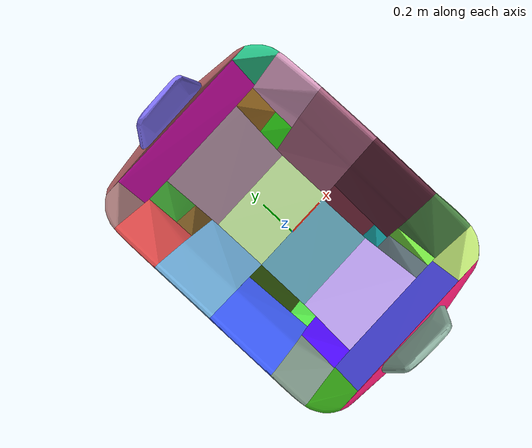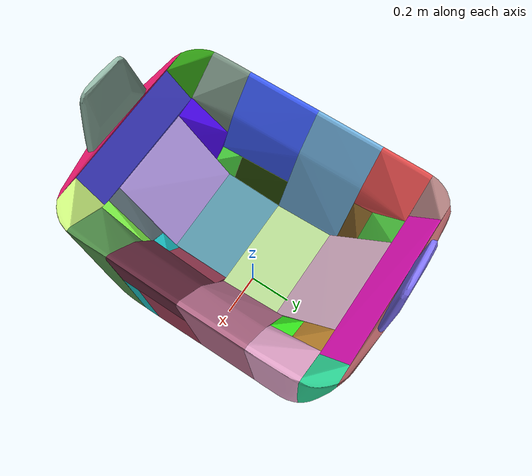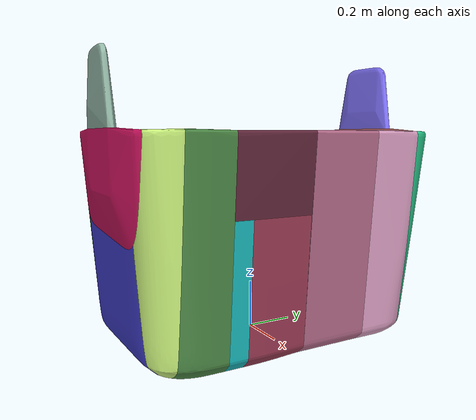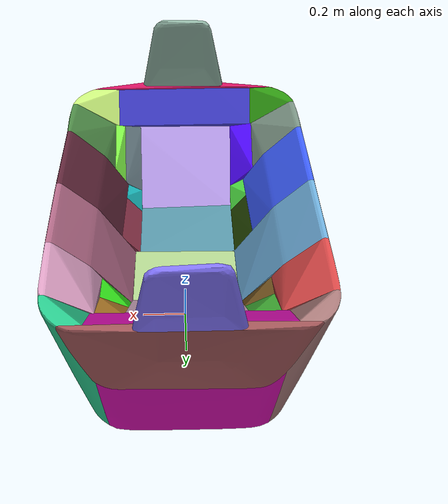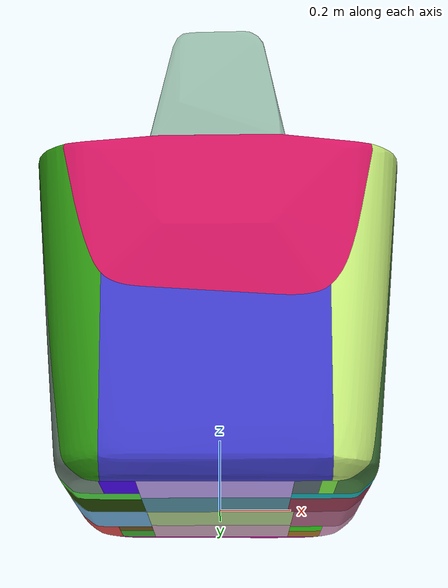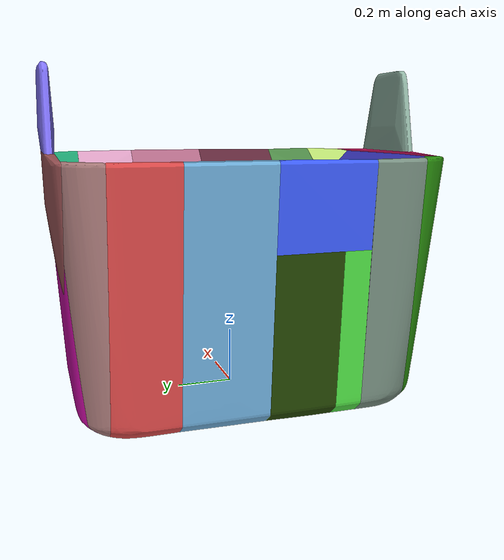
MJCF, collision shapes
<mujoco model="bucket">
  <default>
    <default class="visual">
      <geom group="1" type="mesh" contype="0" conaffinity="0"/>
    </default>
    <default class="collision">
      <geom group="0" type="mesh"/>
    </default>
  </default>
  <asset>
    <texture type="2d" name="texture_diffuse" file="texture_diffuse.png"/>
    <material name="CustomMaterial" texture="texture_diffuse" specular="0.5" shininess="0.5"/>
    <mesh name="bucket" file="bucket.obj"/>
    <mesh name="bucket_collision_0" file="bucket_collision_0.obj"/>
    <mesh name="bucket_collision_1" file="bucket_collision_1.obj"/>
    <mesh name="bucket_collision_2" file="bucket_collision_2.obj"/>
    <mesh name="bucket_collision_3" file="bucket_collision_3.obj"/>
    <mesh name="bucket_collision_4" file="bucket_collision_4.obj"/>
    <mesh name="bucket_collision_5" file="bucket_collision_5.obj"/>
    <mesh name="bucket_collision_6" file="bucket_collision_6.obj"/>
    <mesh name="bucket_collision_7" file="bucket_collision_7.obj"/>
    <mesh name="bucket_collision_8" file="bucket_collision_8.obj"/>
    <mesh name="bucket_collision_9" file="bucket_collision_9.obj"/>
    <mesh name="bucket_collision_10" file="bucket_collision_10.obj"/>
    <mesh name="bucket_collision_11" file="bucket_collision_11.obj"/>
    <mesh name="bucket_collision_12" file="bucket_collision_12.obj"/>
    <mesh name="bucket_collision_13" file="bucket_collision_13.obj"/>
    <mesh name="bucket_collision_14" file="bucket_collision_14.obj"/>
    <mesh name="bucket_collision_15" file="bucket_collision_15.obj"/>
    <mesh name="bucket_collision_16" file="bucket_collision_16.obj"/>
    <mesh name="bucket_collision_17" file="bucket_collision_17.obj"/>
    <mesh name="bucket_collision_18" file="bucket_collision_18.obj"/>
    <mesh name="bucket_collision_19" file="bucket_collision_19.obj"/>
    <mesh name="bucket_collision_20" file="bucket_collision_20.obj"/>
    <mesh name="bucket_collision_21" file="bucket_collision_21.obj"/>
    <mesh name="bucket_collision_22" file="bucket_collision_22.obj"/>
    <mesh name="bucket_collision_23" file="bucket_collision_23.obj"/>
    <mesh name="bucket_collision_24" file="bucket_collision_24.obj"/>
    <mesh name="bucket_collision_25" file="bucket_collision_25.obj"/>
    <mesh name="bucket_collision_26" file="bucket_collision_26.obj"/>
    <mesh name="bucket_collision_27" file="bucket_collision_27.obj"/>
    <mesh name="bucket_collision_28" file="bucket_collision_28.obj"/>
    <mesh name="bucket_collision_29" file="bucket_collision_29.obj"/>
    <mesh name="bucket_collision_30" file="bucket_collision_30.obj"/>
    <mesh name="bucket_collision_31" file="bucket_collision_31.obj"/>
    <mesh name="bucket_collision_32" file="bucket_collision_32.obj"/>
  </asset>
  <worldbody>
    <body>
      <body name="object">
        <geom material="CustomMaterial" mesh="bucket" class="visual"/>
        <geom mesh="bucket_collision_0" rgba="0.5705533480625488 0.7098540375604253 0.6458231635094019 1" class="collision"/>
        <geom mesh="bucket_collision_1" rgba="0.5090615592530828 0.4549257370397558 0.9935983699633433 1" class="collision"/>
        <geom mesh="bucket_collision_2" rgba="0.6199201936984711 0.33192485265759264 0.3405287537335381 1" class="collision"/>
        <geom mesh="bucket_collision_3" rgba="0.8216350545255234 0.07647779440191171 0.37736099306236415 1" class="collision"/>
        <geom mesh="bucket_collision_4" rgba="0.17448939275618514 0.5782476106703236 0.062188598735187006 1" class="collision"/>
        <geom mesh="bucket_collision_5" rgba="0.4286355550929476 0.677416604931591 0.8521015202261704 1" class="collision"/>
        <geom mesh="bucket_collision_6" rgba="0.23764655043965988 0.3683018567666604 0.9970868011324929 1" class="collision"/>
        <geom mesh="bucket_collision_7" rgba="0.2984574136552911 0.021475561928017806 0.9642488627692454 1" class="collision"/>
        <geom mesh="bucket_collision_8" rgba="0.7796852504375688 0.934242262309241 0.47530675884684837 1" class="collision"/>
        <geom mesh="bucket_collision_9" rgba="0.6588599815521385 0.4766655362525999 0.47341128982624514 1" class="collision"/>
        <geom mesh="bucket_collision_10" rgba="0.33090843617305854 0.5723890356252215 0.641654125659195 1" class="collision"/>
        <geom mesh="bucket_collision_11" rgba="0.46826957656588974 0.5625203597027862 0.5055373494851576 1" class="collision"/>
        <geom mesh="bucket_collision_12" rgba="0.15645776940159017 0.7827802836273773 0.5468629498232191 1" class="collision"/>
        <geom mesh="bucket_collision_13" rgba="0.8612855805500194 0.2869456049236041 0.2855546713899718 1" class="collision"/>
        <geom mesh="bucket_collision_14" rgba="0.8105367898623455 0.6581691715701754 0.7440029636660428 1" class="collision"/>
        <geom mesh="bucket_collision_15" rgba="0.6887625379077851 0.82307253601256 0.5524068498782689 1" class="collision"/>
        <geom mesh="bucket_collision_16" rgba="0.8331624499308864 0.04886676663231637 0.6757544403869287 1" class="collision"/>
        <geom mesh="bucket_collision_17" rgba="0.5919794443490238 0.22370194619057038 0.3177783886950065 1" class="collision"/>
        <geom mesh="bucket_collision_18" rgba="0.2429749242327155 0.23291098264460142 0.7896925050310892 1" class="collision"/>
        <geom mesh="bucket_collision_19" rgba="0.7576025826394689 0.6475224270709761 0.9685180322782136 1" class="collision"/>
        <geom mesh="bucket_collision_20" rgba="0.6892504889512623 0.4073789253829114 0.5233829003812583 1" class="collision"/>
        <geom mesh="bucket_collision_21" rgba="0.4589971953397136 0.3331147437014571 0.12127844778302854 1" class="collision"/>
        <geom mesh="bucket_collision_22" rgba="0.3146557811550902 0.8815042572136389 0.26874216816654295 1" class="collision"/>
        <geom mesh="bucket_collision_23" rgba="0.3716208529543046 0.15125667288681321 0.2246434634476293 1" class="collision"/>
        <geom mesh="bucket_collision_24" rgba="0.2634993524995477 0.6965507968365993 0.21406521290232206 1" class="collision"/>
        <geom mesh="bucket_collision_25" rgba="0.14444287267348122 0.27514059227090104 0.017375533996246695 1" class="collision"/>
        <geom mesh="bucket_collision_26" rgba="0.2944562865863145 0.5267844404729011 0.26899239766495686 1" class="collision"/>
        <geom mesh="bucket_collision_27" rgba="0.8601876032550283 0.623181629516427 0.7636764849720487 1" class="collision"/>
        <geom mesh="bucket_collision_28" rgba="0.20321347244986587 0.8946037186969088 0.10648266808681095 1" class="collision"/>
        <geom mesh="bucket_collision_29" rgba="0.6857334277699398 0.47670487668057104 0.15863784013388627 1" class="collision"/>
        <geom mesh="bucket_collision_30" rgba="0.09406182725856138 0.7130161590368237 0.7263439553069165 1" class="collision"/>
        <geom mesh="bucket_collision_31" rgba="0.3594952226953042 0.4344476135178512 0.4639102917375041 1" class="collision"/>
        <geom mesh="bucket_collision_32" rgba="0.49853969943855503 0.9534883832952802 0.2754044627958038 1" class="collision"/>
      </body>
    </body>
  </worldbody>
</mujoco>
